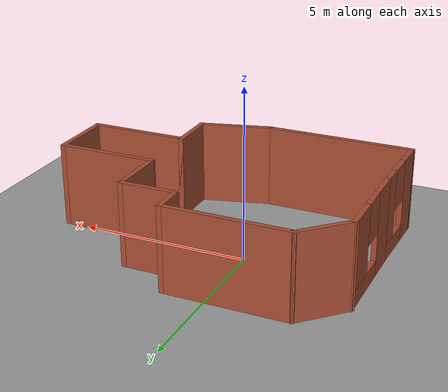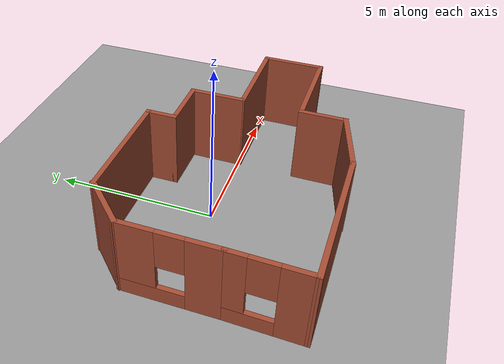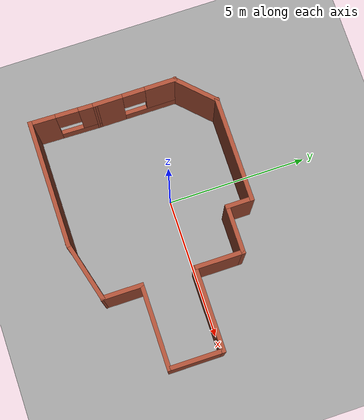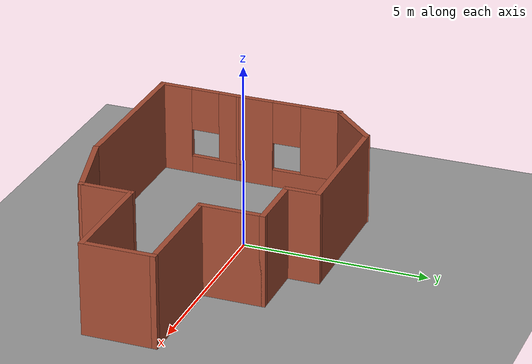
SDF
<sdf version="1.6">
 <world name="default">
  <light name="sun" type="directional">
   <pose>0 0 10 0 -0 0</pose>
   <diffuse>0.8 0.8 0.8 1</diffuse>
   <specular>0.2 0.2 0.2 1</specular>
   <attenuation>
    <range>1000</range>
    <constant>0.9</constant>
    <linear>0.01</linear>
    <quadratic>0.001</quadratic>
   </attenuation>
   <direction>0.5 0.1 -0.9</direction>
  </light>
  <scene><ambient>0.4 0.4 0.4 1</ambient><background>0.7 0.7 0.7 1</background><shadows>1</shadows></scene>
  <physics name="default_physics" default="0" type="ode">
   <max_step_size>0.01</max_step_size>
   <real_time_factor>1</real_time_factor>
   <real_time_update_rate>100</real_time_update_rate>
  </physics>
  <model name="ground_plane_0">
   <static>1</static>
   <link name="link">
    <collision name="collision">
     <geometry><plane><normal>0 0 1</normal><size>100 100</size></plane></geometry>
     <surface><friction><ode><mu>100</mu><mu2>50</mu2></ode></friction></surface>
    </collision>
    <visual name="visual">
     <cast_shadows>0</cast_shadows>
     <geometry><plane><normal>0 0 1</normal><size>100 100</size></plane></geometry>
     <material>
      <script><uri>file://media/materials/scripts/gazebo.material</uri><name>Gazebo/Grey</name></script>
     </material>
    </visual>
    <velocity_decay><linear>0</linear><angular>0</angular></velocity_decay>
   </link>
   <pose>0.497681 0 0 0 -0 0</pose>
  </model>
  <gravity>0 0 -9.8</gravity>
  <magnetic_field>6e-06 2.3e-05 -4.2e-05</magnetic_field>
  <atmosphere type="adiabatic"/>
  <spherical_coordinates>
   <surface_model>EARTH_WGS84</surface_model>
   <latitude_deg>0</latitude_deg>
   <longitude_deg>0</longitude_deg>
   <elevation>0</elevation>
   <heading_deg>0</heading_deg>
  </spherical_coordinates>
  <model name="finger_room">
   <pose>1.04953 -0.64275 0 0 -0 0</pose>
   <link name="Wall_10">
    <collision name="Wall_10_Collision">
     <geometry><box><size>1 0.15 2.5</size></box></geometry>
     <pose>0 0 1.25 0 -0 0</pose>
    </collision>
    <visual name="Wall_10_Visual">
     <pose>0 0 1.25 0 -0 0</pose>
     <geometry><box><size>1 0.15 2.5</size></box></geometry>
     <material>
      <script><uri>file://media/materials/scripts/gazebo.material</uri><name>Gazebo/Bricks</name></script>
      <ambient>1 1 1 1</ambient>
     </material>
    </visual>
    <pose>0.164994 2.68966 0 0 0 -1.5708</pose>
   </link>
   <link name="Wall_11">
    <collision name="Wall_11_Collision">
     <geometry><box><size>1.75 0.15 2.5</size></box></geometry>
     <pose>0 0 1.25 0 -0 0</pose>
    </collision>
    <visual name="Wall_11_Visual">
     <pose>0 0 1.25 0 -0 0</pose>
     <geometry><box><size>1.75 0.15 2.5</size></box></geometry>
     <material>
      <script><uri>file://media/materials/scripts/gazebo.material</uri><name>Gazebo/Bricks</name></script>
      <ambient>1 1 1 1</ambient>
     </material>
    </visual>
    <pose>0.964994 2.26465 0 0 -0 0</pose>
   </link>
   <link name="Wall_13">
    <collision name="Wall_13_Collision">
     <geometry><box><size>2.25 0.15 2.5</size></box></geometry>
     <pose>0 0 1.25 0 -0 0</pose>
    </collision>
    <visual name="Wall_13_Visual">
     <pose>0 0 1.25 0 -0 0</pose>
     <geometry><box><size>2.25 0.15 2.5</size></box></geometry>
     <material>
      <script><uri>file://media/materials/scripts/gazebo.material</uri><name>Gazebo/Bricks</name></script>
      <ambient>1 1 1 1</ambient>
     </material>
    </visual>
    <pose>0.750772 -2.8571 0 0 0 -2.87979</pose>
   </link>
   <link name="Wall_14">
    <collision name="Wall_14_Collision">
     <geometry><box><size>4.5 0.15 2.5</size></box></geometry>
     <pose>0 0 1.25 0 -0 0</pose>
    </collision>
    <visual name="Wall_14_Visual">
     <pose>0 0 1.25 0 -0 0</pose>
     <geometry><box><size>4.5 0.15 2.5</size></box></geometry>
     <material>
      <script><uri>file://media/materials/scripts/gazebo.material</uri><name>Gazebo/Bricks</name></script>
      <ambient>1 1 1 1</ambient>
     </material>
    </visual>
    <pose>-2.43845 -3.12886 0 0 -0 3.14159</pose>
   </link>
   <link name="Wall_15">
    <pose>-4.58991 -1.99779 0 0 -0 1.54999</pose>
    <visual name="Wall_15_Visual_0">
     <pose>-0.729896 0 1.25 0 -0 0</pose>
     <geometry><box><size>0.952847 0.15 2.5</size></box></geometry>
     <material>
      <script><uri>file://media/materials/scripts/gazebo.material</uri><name>Gazebo/Bricks</name></script>
      <ambient>1 1 1 1</ambient>
     </material>
    </visual>
    <collision name="Wall_15_Collision_0">
     <geometry><box><size>0.952847 0.15 2.5</size></box></geometry>
     <pose>-0.729896 0 1.25 0 -0 0</pose>
    </collision>
    <visual name="Wall_15_Visual_1">
     <pose>0.476423 0 0.25 0 -0 0</pose>
     <geometry><box><size>1.45979 0.15 0.5</size></box></geometry>
     <material>
      <script><uri>file://media/materials/scripts/gazebo.material</uri><name>Gazebo/Bricks</name></script>
      <ambient>1 1 1 1</ambient>
     </material>
    </visual>
    <collision name="Wall_15_Collision_1">
     <geometry><box><size>1.45979 0.15 0.5</size></box></geometry>
     <pose>0.476423 0 0.25 0 -0 0</pose>
    </collision>
    <visual name="Wall_15_Visual_2">
     <pose>0.876423 0 1.5 0 -0 0</pose>
     <geometry><box><size>0.659792 0.15 2</size></box></geometry>
     <material>
      <script><uri>file://media/materials/scripts/gazebo.material</uri><name>Gazebo/Bricks</name></script>
      <ambient>1 1 1 1</ambient>
     </material>
    </visual>
    <collision name="Wall_15_Collision_2">
     <geometry><box><size>0.659792 0.15 2</size></box></geometry>
     <pose>0.876423 0 1.5 0 -0 0</pose>
    </collision>
    <visual name="Wall_15_Visual_3">
     <pose>0.146527 0 1.9 0 -0 0</pose>
     <geometry><box><size>0.8 0.15 1.2</size></box></geometry>
     <material>
      <script><uri>file://media/materials/scripts/gazebo.material</uri><name>Gazebo/Bricks</name></script>
      <ambient>1 1 1 1</ambient>
     </material>
    </visual>
    <collision name="Wall_15_Collision_3">
     <geometry><box><size>0.8 0.15 1.2</size></box></geometry>
     <pose>0.146527 0 1.9 0 -0 0</pose>
    </collision>
   </link>
   <link name="Wall_29">
    <collision name="Wall_29_Collision">
     <geometry><box><size>1.75 0.15 2.5</size></box></geometry>
     <pose>0 0 1.25 0 -0 0</pose>
    </collision>
    <visual name="Wall_29_Visual">
     <pose>0 0 1.25 0 -0 0</pose>
     <geometry><box><size>1.75 0.15 2.5</size></box></geometry>
     <material>
      <script><uri>file://media/materials/scripts/gazebo.material</uri><name>Gazebo/Bricks</name></script>
      <ambient>1 1 1 1</ambient>
     </material>
    </visual>
    <pose>1.76499 1.46466 0 0 0 -1.5708</pose>
   </link>
   <link name="Wall_34">
    <collision name="Wall_34_Collision">
     <geometry><box><size>1.5 0.15 2.5</size></box></geometry>
     <pose>0 0 1.25 0 -0 0</pose>
    </collision>
    <visual name="Wall_34_Visual">
     <pose>0 0 1.25 0 -0 0</pose>
     <geometry><box><size>1.5 0.15 2.5</size></box></geometry>
     <material>
      <script><uri>file://media/materials/scripts/gazebo.material</uri><name>Gazebo/Bricks</name></script>
      <ambient>1 1 1 1</ambient>
     </material>
    </visual>
    <pose>1.76499 -1.91034 0 0 -0 1.5708</pose>
   </link>
   <link name="Wall_35">
    <collision name="Wall_35_Collision">
     <geometry><box><size>3 0.15 2.5</size></box></geometry>
     <pose>0 0 1.25 0 -0 0</pose>
    </collision>
    <visual name="Wall_35_Visual">
     <pose>0 0 1.25 0 -0 0</pose>
     <geometry><box><size>3 0.15 2.5</size></box></geometry>
     <material>
      <script><uri>file://media/materials/scripts/gazebo.material</uri><name>Gazebo/Bricks</name></script>
      <ambient>1 1 1 1</ambient>
     </material>
    </visual>
    <pose>3.18999 -1.23534 0 0 -0 0</pose>
   </link>
   <link name="Wall_36">
    <collision name="Wall_36_Collision">
     <geometry><box><size>2 0.15 2.5</size></box></geometry>
     <pose>0 0 1.25 0 -0 0</pose>
    </collision>
    <visual name="Wall_36_Visual">
     <pose>0 0 1.25 0 -0 0</pose>
     <geometry><box><size>2 0.15 2.5</size></box></geometry>
     <material>
      <script><uri>file://media/materials/scripts/gazebo.material</uri><name>Gazebo/Bricks</name></script>
      <ambient>1 1 1 1</ambient>
     </material>
    </visual>
    <pose>4.61499 -0.310345 0 0 -0 1.5708</pose>
   </link>
   <link name="Wall_37">
    <collision name="Wall_37_Collision">
     <geometry><box><size>3 0.15 2.5</size></box></geometry>
     <pose>0 0 1.25 0 -0 0</pose>
    </collision>
    <visual name="Wall_37_Visual">
     <pose>0 0 1.25 0 -0 0</pose>
     <geometry><box><size>3 0.15 2.5</size></box></geometry>
     <material>
      <script><uri>file://media/materials/scripts/gazebo.material</uri><name>Gazebo/Bricks</name></script>
      <ambient>1 1 1 1</ambient>
     </material>
    </visual>
    <pose>3.18999 0.614655 0 0 -0 3.14159</pose>
   </link>
   <link name="Wall_7">
    <pose>-4.56638 0.558284 0 0 -0 1.5708</pose>
    <visual name="Wall_7_Visual_0">
     <pose>-0.976514 0 1.25 0 -0 0</pose>
     <geometry><box><size>1.04697 0.15 2.5</size></box></geometry>
     <material>
      <script><uri>file://media/materials/scripts/gazebo.material</uri><name>Gazebo/Bricks</name></script>
      <ambient>1 1 1 1</ambient>
     </material>
    </visual>
    <collision name="Wall_7_Collision_0">
     <geometry><box><size>1.04697 0.15 2.5</size></box></geometry>
     <pose>-0.976514 0 1.25 0 -0 0</pose>
    </collision>
    <visual name="Wall_7_Visual_1">
     <pose>0.523486 0 0.25 0 -0 0</pose>
     <geometry><box><size>1.95303 0.15 0.5</size></box></geometry>
     <material>
      <script><uri>file://media/materials/scripts/gazebo.material</uri><name>Gazebo/Bricks</name></script>
      <ambient>1 1 1 1</ambient>
     </material>
    </visual>
    <collision name="Wall_7_Collision_1">
     <geometry><box><size>1.95303 0.15 0.5</size></box></geometry>
     <pose>0.523486 0 0.25 0 -0 0</pose>
    </collision>
    <visual name="Wall_7_Visual_2">
     <pose>0.923486 0 1.5 0 -0 0</pose>
     <geometry><box><size>1.15303 0.15 2</size></box></geometry>
     <material>
      <script><uri>file://media/materials/scripts/gazebo.material</uri><name>Gazebo/Bricks</name></script>
      <ambient>1 1 1 1</ambient>
     </material>
    </visual>
    <collision name="Wall_7_Collision_2">
     <geometry><box><size>1.15303 0.15 2</size></box></geometry>
     <pose>0.923486 0 1.5 0 -0 0</pose>
    </collision>
    <visual name="Wall_7_Visual_3">
     <pose>-0.053028 0 1.9 0 -0 0</pose>
     <geometry><box><size>0.8 0.15 1.2</size></box></geometry>
     <material>
      <script><uri>file://media/materials/scripts/gazebo.material</uri><name>Gazebo/Bricks</name></script>
      <ambient>1 1 1 1</ambient>
     </material>
    </visual>
    <collision name="Wall_7_Collision_3">
     <geometry><box><size>0.8 0.15 1.2</size></box></geometry>
     <pose>-0.053028 0 1.9 0 -0 0</pose>
    </collision>
   </link>
   <link name="Wall_8">
    <collision name="Wall_8_Collision">
     <geometry><box><size>1.75 0.15 2.5</size></box></geometry>
     <pose>0 0 1.25 0 -0 0</pose>
    </collision>
    <visual name="Wall_8_Visual">
     <pose>0 0 1.25 0 -0 0</pose>
     <geometry><box><size>1.75 0.15 2.5</size></box></geometry>
     <material>
      <script><uri>file://media/materials/scripts/gazebo.material</uri><name>Gazebo/Bricks</name></script>
      <ambient>1 1 1 1</ambient>
     </material>
    </visual>
    <pose>-4.00069 2.54897 0 0 -0 0.785398</pose>
   </link>
   <link name="Wall_9">
    <collision name="Wall_9_Collision">
     <geometry><box><size>3.75 0.15 2.5</size></box></geometry>
     <pose>0 0 1.25 0 -0 0</pose>
    </collision>
    <visual name="Wall_9_Visual">
     <pose>0 0 1.25 0 -0 0</pose>
     <geometry><box><size>3.75 0.15 2.5</size></box></geometry>
     <material>
      <script><uri>file://media/materials/scripts/gazebo.material</uri><name>Gazebo/Bricks</name></script>
      <ambient>1 1 1 1</ambient>
     </material>
    </visual>
    <pose>-1.63501 3.11465 0 0 -0 0</pose>
   </link>
   <static>1</static>
  </model>
 </world>
</sdf>
